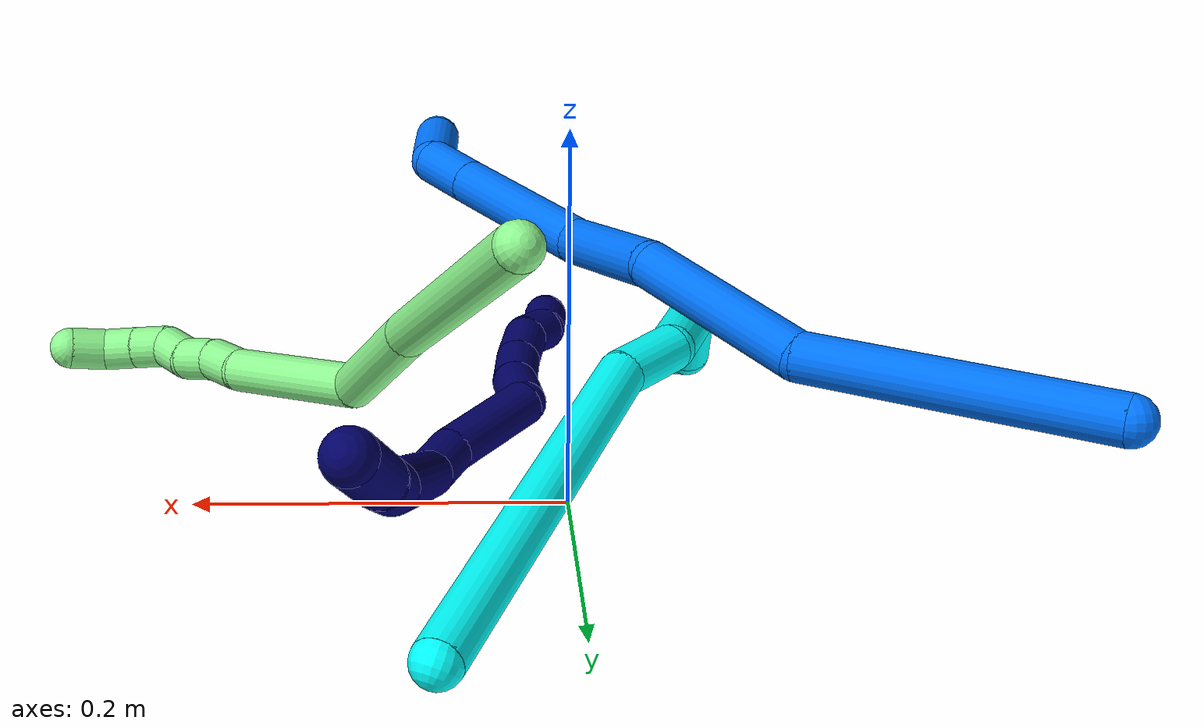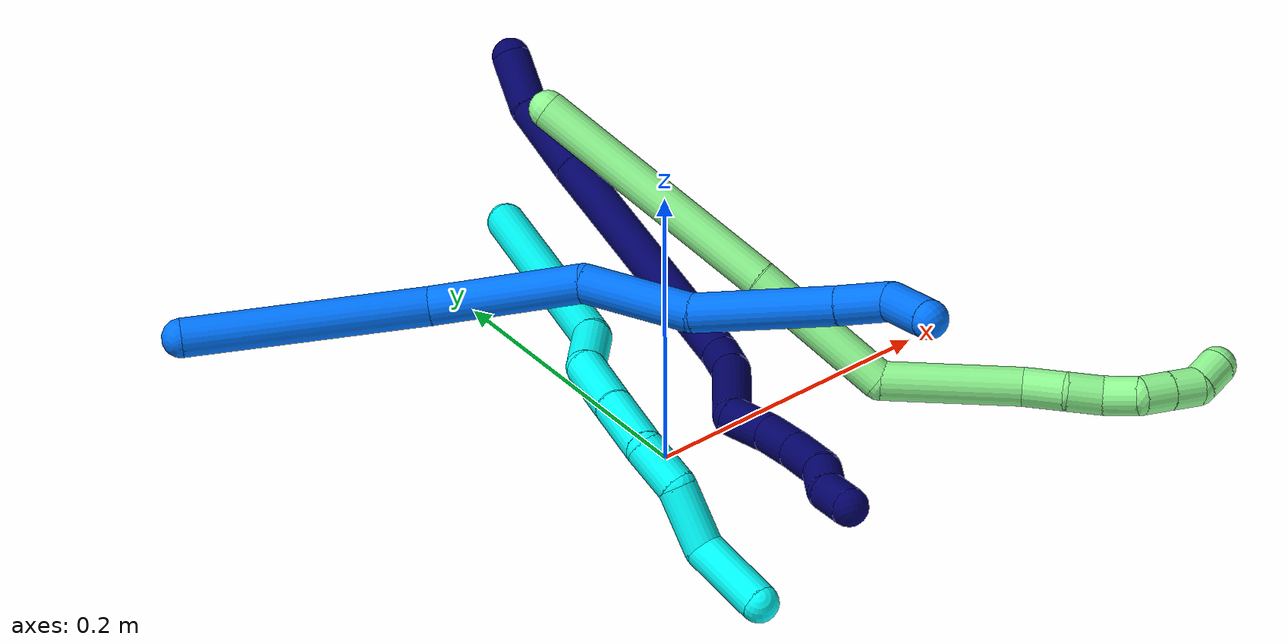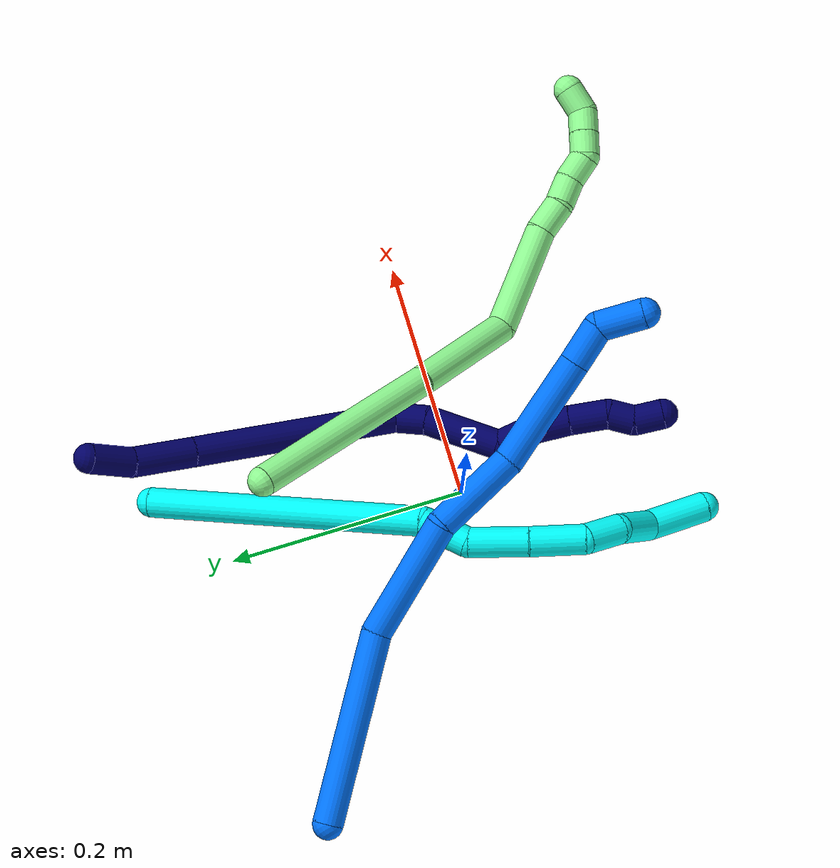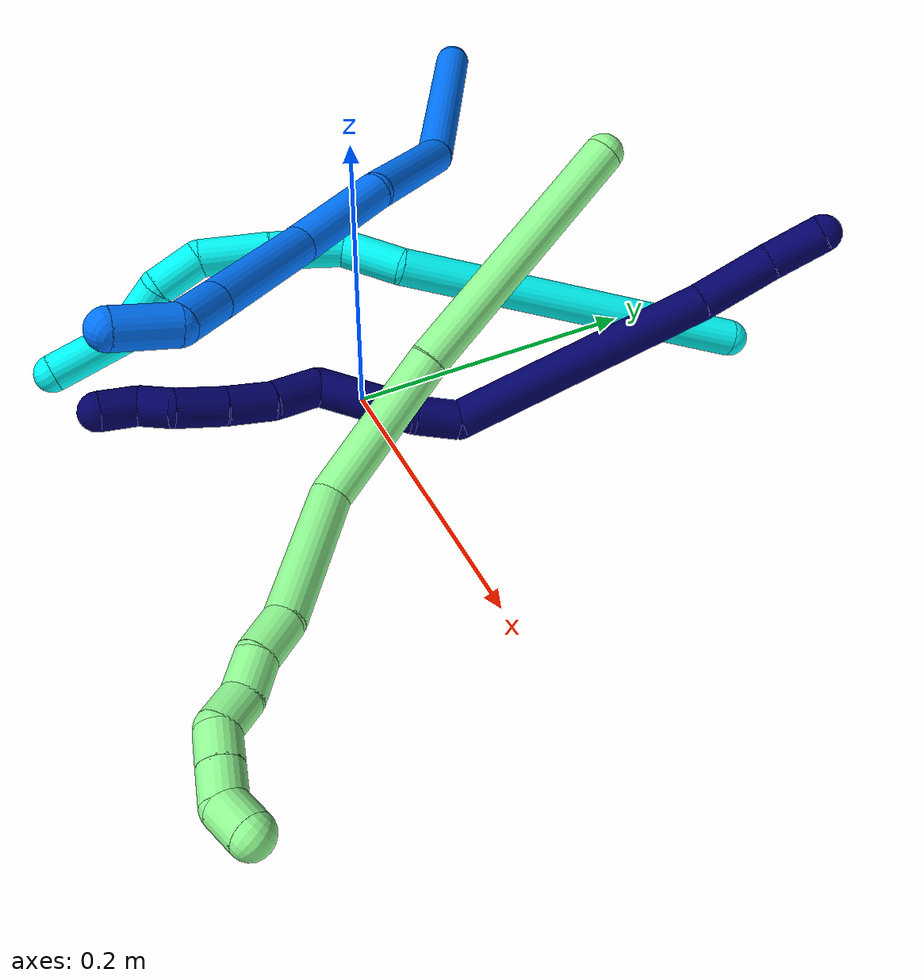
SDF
<sdf version="1.7">
 <world name="default">
  <model name="3">
   <static>0</static>
   <link name="3">
    <collision name="collision-cylinder-e_1_1_4">
     <pose>-0.035295 -0.068706 -0.090647 2.49302 -0.300882 -0.847282</pose>
     <geometry><cylinder><radius>0.0125</radius><length>0.238185</length></cylinder></geometry>
     <surface>
      <friction><ode><mu>1.16</mu><mu2>1.16</mu2><slip1>0</slip1><slip2>0</slip2></ode></friction>
      <contact><ode><kp>1e+06</kp><kd>1</kd><max_vel>0</max_vel><min_depth>0.001</min_depth></ode></contact>
     </surface>
    </collision>
    <visual name="visual-cylinder-e_1_1_4">
     <pose>-0.035295 -0.068706 -0.090647 2.49302 -0.300882 -0.847282</pose>
     <geometry><cylinder><radius>0.0125</radius><length>0.238185</length></cylinder></geometry>
     <material><ambient>0.003922 1 0.996078 1</ambient></material>
    </visual>
    <collision name="collision-cylinder-e_2_4_5">
     <pose>-0.07017 -0.152527 -0.19514 2.31239 0.020465 0.046492</pose>
     <geometry><cylinder><radius>0.0125</radius><length>0.041006</length></cylinder></geometry>
     <surface>
      <friction><ode><mu>1.16</mu><mu2>1.16</mu2><slip1>0</slip1><slip2>0</slip2></ode></friction>
      <contact><ode><kp>1e+06</kp><kd>1</kd><max_vel>0</max_vel><min_depth>0.001</min_depth></ode></contact>
     </surface>
    </collision>
    <visual name="visual-cylinder-e_2_4_5">
     <pose>-0.07017 -0.152527 -0.19514 2.31239 0.020465 0.046492</pose>
     <geometry><cylinder><radius>0.0125</radius><length>0.041006</length></cylinder></geometry>
     <material><ambient>0.003922 1 0.996078 1</ambient></material>
    </visual>
    <collision name="collision-cylinder-e_3_5_6">
     <pose>-0.080409 -0.1846 -0.223397 2.27517 -0.446683 -0.912972</pose>
     <geometry><cylinder><radius>0.0125</radius><length>0.049347</length></cylinder></geometry>
     <surface>
      <friction><ode><mu>1.16</mu><mu2>1.16</mu2><slip1>0</slip1><slip2>0</slip2></ode></friction>
      <contact><ode><kp>1e+06</kp><kd>1</kd><max_vel>0</max_vel><min_depth>0.001</min_depth></ode></contact>
     </surface>
    </collision>
    <visual name="visual-cylinder-e_3_5_6">
     <pose>-0.080409 -0.1846 -0.223397 2.27517 -0.446683 -0.912972</pose>
     <geometry><cylinder><radius>0.0125</radius><length>0.049347</length></cylinder></geometry>
     <material><ambient>0.003922 1 0.996078 1</ambient></material>
    </visual>
    <collision name="collision-cylinder-e_4_6_7">
     <pose>-0.101999 -0.217835 -0.249831 2.20705 -0.495258 -0.929032</pose>
     <geometry><cylinder><radius>0.0125</radius><length>0.046003</length></cylinder></geometry>
     <surface>
      <friction><ode><mu>1.16</mu><mu2>1.16</mu2><slip1>0</slip1><slip2>0</slip2></ode></friction>
      <contact><ode><kp>1e+06</kp><kd>1</kd><max_vel>0</max_vel><min_depth>0.001</min_depth></ode></contact>
     </surface>
    </collision>
    <visual name="visual-cylinder-e_4_6_7">
     <pose>-0.101999 -0.217835 -0.249831 2.20705 -0.495258 -0.929032</pose>
     <geometry><cylinder><radius>0.0125</radius><length>0.046003</length></cylinder></geometry>
     <material><ambient>0.003922 1 0.996078 1</ambient></material>
    </visual>
    <collision name="collision-cylinder-e_5_7_8">
     <pose>-0.12409 -0.245893 -0.263087 1.67488 -0.755645 -0.829868</pose>
     <geometry><cylinder><radius>0.0125</radius><length>0.032548</length></cylinder></geometry>
     <surface>
      <friction><ode><mu>1.16</mu><mu2>1.16</mu2><slip1>0</slip1><slip2>0</slip2></ode></friction>
      <contact><ode><kp>1e+06</kp><kd>1</kd><max_vel>0</max_vel><min_depth>0.001</min_depth></ode></contact>
     </surface>
    </collision>
    <visual name="visual-cylinder-e_5_7_8">
     <pose>-0.12409 -0.245893 -0.263087 1.67488 -0.755645 -0.829868</pose>
     <geometry><cylinder><radius>0.0125</radius><length>0.032548</length></cylinder></geometry>
     <material><ambient>0.003922 1 0.996078 1</ambient></material>
    </visual>
    <collision name="collision-cylinder-e_6_8_9">
     <pose>-0.145313 -0.274306 -0.257548 1.18424 -0.510776 -0.347689</pose>
     <geometry><cylinder><radius>0.0125</radius><length>0.041168</length></cylinder></geometry>
     <surface>
      <friction><ode><mu>1.16</mu><mu2>1.16</mu2><slip1>0</slip1><slip2>0</slip2></ode></friction>
      <contact><ode><kp>1e+06</kp><kd>1</kd><max_vel>0</max_vel><min_depth>0.001</min_depth></ode></contact>
     </surface>
    </collision>
    <visual name="visual-cylinder-e_6_8_9">
     <pose>-0.145313 -0.274306 -0.257548 1.18424 -0.510776 -0.347689</pose>
     <geometry><cylinder><radius>0.0125</radius><length>0.041168</length></cylinder></geometry>
     <material><ambient>0.003922 1 0.996078 1</ambient></material>
    </visual>
    <collision name="collision-cylinder-e_7_9_2">
     <pose>-0.173861 -0.308124 -0.256453 1.88973 -0.79596 -1.0535</pose>
     <geometry><cylinder><radius>0.0125</radius><length>0.051742</length></cylinder></geometry>
     <surface>
      <friction><ode><mu>1.16</mu><mu2>1.16</mu2><slip1>0</slip1><slip2>0</slip2></ode></friction>
      <contact><ode><kp>1e+06</kp><kd>1</kd><max_vel>0</max_vel><min_depth>0.001</min_depth></ode></contact>
     </surface>
    </collision>
    <visual name="visual-cylinder-e_7_9_2">
     <pose>-0.173861 -0.308124 -0.256453 1.88973 -0.79596 -1.0535</pose>
     <geometry><cylinder><radius>0.0125</radius><length>0.051742</length></cylinder></geometry>
     <material><ambient>0.003922 1 0.996078 1</ambient></material>
    </visual>
    <collision name="collision-sphere-2">
     <pose>-0.192347 -0.325311 -0.262128 0 -0 0</pose>
     <geometry><sphere><radius>0.0125</radius></sphere></geometry>
     <surface>
      <friction><ode><mu>1.16</mu><mu2>1.16</mu2><slip1>0</slip1><slip2>0</slip2></ode></friction>
      <contact><ode><kp>1e+06</kp><kd>1</kd><max_vel>0</max_vel><min_depth>0.001</min_depth></ode></contact>
     </surface>
    </collision>
    <visual name="visual-sphere-2">
     <pose>-0.192347 -0.325311 -0.262128 0 -0 0</pose>
     <geometry><sphere><radius>0.0125</radius></sphere></geometry>
     <material><ambient>0.003922 1 0.996078 1</ambient></material>
    </visual>
    <collision name="collision-sphere-9">
     <pose>-0.155376 -0.290938 -0.250778 0 -0 0</pose>
     <geometry><sphere><radius>0.0125</radius></sphere></geometry>
     <surface>
      <friction><ode><mu>1.16</mu><mu2>1.16</mu2><slip1>0</slip1><slip2>0</slip2></ode></friction>
      <contact><ode><kp>1e+06</kp><kd>1</kd><max_vel>0</max_vel><min_depth>0.001</min_depth></ode></contact>
     </surface>
    </collision>
    <visual name="visual-sphere-9">
     <pose>-0.155376 -0.290938 -0.250778 0 -0 0</pose>
     <geometry><sphere><radius>0.0125</radius></sphere></geometry>
     <material><ambient>0.003922 1 0.996078 1</ambient></material>
    </visual>
    <collision name="collision-sphere-4">
     <pose>-0.070589 -0.137411 -0.181294 0 -0 0</pose>
     <geometry><sphere><radius>0.0125</radius></sphere></geometry>
     <surface>
      <friction><ode><mu>1.16</mu><mu2>1.16</mu2><slip1>0</slip1><slip2>0</slip2></ode></friction>
      <contact><ode><kp>1e+06</kp><kd>1</kd><max_vel>0</max_vel><min_depth>0.001</min_depth></ode></contact>
     </surface>
    </collision>
    <visual name="visual-sphere-4">
     <pose>-0.070589 -0.137411 -0.181294 0 -0 0</pose>
     <geometry><sphere><radius>0.0125</radius></sphere></geometry>
     <material><ambient>0.003922 1 0.996078 1</ambient></material>
    </visual>
    <collision name="collision-sphere-1">
     <geometry><sphere><radius>0.0125</radius></sphere></geometry>
     <surface>
      <friction><ode><mu>1.16</mu><mu2>1.16</mu2><slip1>0</slip1><slip2>0</slip2></ode></friction>
      <contact><ode><kp>1e+06</kp><kd>1</kd><max_vel>0</max_vel><min_depth>0.001</min_depth></ode></contact>
     </surface>
    </collision>
    <visual name="visual-sphere-1">
     <geometry><sphere><radius>0.0125</radius></sphere></geometry>
     <material><ambient>0.003922 1 0.996078 1</ambient></material>
    </visual>
    <collision name="collision-sphere-8">
     <pose>-0.13525 -0.257674 -0.264318 0 -0 0</pose>
     <geometry><sphere><radius>0.0125</radius></sphere></geometry>
     <surface>
      <friction><ode><mu>1.16</mu><mu2>1.16</mu2><slip1>0</slip1><slip2>0</slip2></ode></friction>
      <contact><ode><kp>1e+06</kp><kd>1</kd><max_vel>0</max_vel><min_depth>0.001</min_depth></ode></contact>
     </surface>
    </collision>
    <visual name="visual-sphere-8">
     <pose>-0.13525 -0.257674 -0.264318 0 -0 0</pose>
     <geometry><sphere><radius>0.0125</radius></sphere></geometry>
     <material><ambient>0.003922 1 0.996078 1</ambient></material>
    </visual>
    <collision name="collision-sphere-5">
     <pose>-0.06975 -0.167643 -0.208987 0 -0 0</pose>
     <geometry><sphere><radius>0.0125</radius></sphere></geometry>
     <surface>
      <friction><ode><mu>1.16</mu><mu2>1.16</mu2><slip1>0</slip1><slip2>0</slip2></ode></friction>
      <contact><ode><kp>1e+06</kp><kd>1</kd><max_vel>0</max_vel><min_depth>0.001</min_depth></ode></contact>
     </surface>
    </collision>
    <visual name="visual-sphere-5">
     <pose>-0.06975 -0.167643 -0.208987 0 -0 0</pose>
     <geometry><sphere><radius>0.0125</radius></sphere></geometry>
     <material><ambient>0.003922 1 0.996078 1</ambient></material>
    </visual>
    <collision name="collision-sphere-6">
     <pose>-0.091067 -0.201557 -0.237806 0 -0 0</pose>
     <geometry><sphere><radius>0.0125</radius></sphere></geometry>
     <surface>
      <friction><ode><mu>1.16</mu><mu2>1.16</mu2><slip1>0</slip1><slip2>0</slip2></ode></friction>
      <contact><ode><kp>1e+06</kp><kd>1</kd><max_vel>0</max_vel><min_depth>0.001</min_depth></ode></contact>
     </surface>
    </collision>
    <visual name="visual-sphere-6">
     <pose>-0.091067 -0.201557 -0.237806 0 -0 0</pose>
     <geometry><sphere><radius>0.0125</radius></sphere></geometry>
     <material><ambient>0.003922 1 0.996078 1</ambient></material>
    </visual>
    <collision name="collision-sphere-7">
     <pose>-0.11293 -0.234113 -0.261856 0 -0 0</pose>
     <geometry><sphere><radius>0.0125</radius></sphere></geometry>
     <surface>
      <friction><ode><mu>1.16</mu><mu2>1.16</mu2><slip1>0</slip1><slip2>0</slip2></ode></friction>
      <contact><ode><kp>1e+06</kp><kd>1</kd><max_vel>0</max_vel><min_depth>0.001</min_depth></ode></contact>
     </surface>
    </collision>
    <visual name="visual-sphere-7">
     <pose>-0.11293 -0.234113 -0.261856 0 -0 0</pose>
     <geometry><sphere><radius>0.0125</radius></sphere></geometry>
     <material><ambient>0.003922 1 0.996078 1</ambient></material>
    </visual>
    <inertial>
     <pose>-0.077923 -0.153978 -0.16909 0 -0 0</pose>
     <mass>0.5</mass>
     <inertia>
      <ixx>-0.000106</ixx>
      <ixy>0</ixy>
      <ixz>0</ixz>
      <iyy>-0.001308</iyy>
      <iyz>0</iyz>
      <izz>0.001036</izz>
     </inertia>
    </inertial>
   </link>
   <pose>0.065842 0.251199 0.01249 2.55295 -0.070994 2.39325</pose>
  </model>
  <model name="7">
   <static>0</static>
   <link name="7">
    <collision name="collision-cylinder-e_1_1_4">
     <pose>0.001049 -0.000856 -0.01905 3.09668 0.054933 1.77085</pose>
     <geometry><cylinder><radius>0.0125</radius><length>0.038195</length></cylinder></geometry>
     <surface>
      <friction><ode><mu>1.16</mu><mu2>1.16</mu2><slip1>0</slip1><slip2>0</slip2></ode></friction>
      <contact><ode><kp>1e+06</kp><kd>1</kd><max_vel>0</max_vel><min_depth>0.001</min_depth></ode></contact>
     </surface>
    </collision>
    <visual name="visual-cylinder-e_1_1_4">
     <pose>0.001049 -0.000856 -0.01905 3.09668 0.054933 1.77085</pose>
     <geometry><cylinder><radius>0.0125</radius><length>0.038195</length></cylinder></geometry>
     <material><ambient>0.003922 0 0.403922 1</ambient></material>
    </visual>
    <collision name="collision-cylinder-e_2_4_5">
     <pose>0.004483 -0.009951 -0.063229 2.8248 0.089972 0.549387</pose>
     <geometry><cylinder><radius>0.0125</radius><length>0.053107</length></cylinder></geometry>
     <surface>
      <friction><ode><mu>1.16</mu><mu2>1.16</mu2><slip1>0</slip1><slip2>0</slip2></ode></friction>
      <contact><ode><kp>1e+06</kp><kd>1</kd><max_vel>0</max_vel><min_depth>0.001</min_depth></ode></contact>
     </surface>
    </collision>
    <visual name="visual-cylinder-e_2_4_5">
     <pose>0.004483 -0.009951 -0.063229 2.8248 0.089972 0.549387</pose>
     <geometry><cylinder><radius>0.0125</radius><length>0.053107</length></cylinder></geometry>
     <material><ambient>0.003922 0 0.403922 1</ambient></material>
    </visual>
    <collision name="collision-cylinder-e_3_5_6">
     <pose>0.008263 -0.050306 -0.169884 2.76631 0.015905 0.083719</pose>
     <geometry><cylinder><radius>0.0125</radius><length>0.175267</length></cylinder></geometry>
     <surface>
      <friction><ode><mu>1.16</mu><mu2>1.16</mu2><slip1>0</slip1><slip2>0</slip2></ode></friction>
      <contact><ode><kp>1e+06</kp><kd>1</kd><max_vel>0</max_vel><min_depth>0.001</min_depth></ode></contact>
     </surface>
    </collision>
    <visual name="visual-cylinder-e_3_5_6">
     <pose>0.008263 -0.050306 -0.169884 2.76631 0.015905 0.083719</pose>
     <geometry><cylinder><radius>0.0125</radius><length>0.175267</length></cylinder></geometry>
     <material><ambient>0.003922 0 0.403922 1</ambient></material>
    </visual>
    <collision name="collision-cylinder-e_4_6_7">
     <pose>0.002448 -0.087936 -0.262036 2.66305 -0.541957 -1.70044</pose>
     <geometry><cylinder><radius>0.0125</radius><length>0.027951</length></cylinder></geometry>
     <surface>
      <friction><ode><mu>1.16</mu><mu2>1.16</mu2><slip1>0</slip1><slip2>0</slip2></ode></friction>
      <contact><ode><kp>1e+06</kp><kd>1</kd><max_vel>0</max_vel><min_depth>0.001</min_depth></ode></contact>
     </surface>
    </collision>
    <visual name="visual-cylinder-e_4_6_7">
     <pose>0.002448 -0.087936 -0.262036 2.66305 -0.541957 -1.70044</pose>
     <geometry><cylinder><radius>0.0125</radius><length>0.027951</length></cylinder></geometry>
     <material><ambient>0.003922 0 0.403922 1</ambient></material>
    </visual>
    <collision name="collision-cylinder-e_5_7_8">
     <pose>-0.026103 -0.099731 -0.296176 2.88054 -0.719915 -2.47038</pose>
     <geometry><cylinder><radius>0.0125</radius><length>0.064738</length></cylinder></geometry>
     <surface>
      <friction><ode><mu>1.16</mu><mu2>1.16</mu2><slip1>0</slip1><slip2>0</slip2></ode></friction>
      <contact><ode><kp>1e+06</kp><kd>1</kd><max_vel>0</max_vel><min_depth>0.001</min_depth></ode></contact>
     </surface>
    </collision>
    <visual name="visual-cylinder-e_5_7_8">
     <pose>-0.026103 -0.099731 -0.296176 2.88054 -0.719915 -2.47038</pose>
     <geometry><cylinder><radius>0.0125</radius><length>0.064738</length></cylinder></geometry>
     <material><ambient>0.003922 0 0.403922 1</ambient></material>
    </visual>
    <collision name="collision-cylinder-e_6_8_9">
     <pose>-0.048921 -0.117441 -0.331069 2.35404 -0.091283 -0.218979</pose>
     <geometry><cylinder><radius>0.0125</radius><length>0.032393</length></cylinder></geometry>
     <surface>
      <friction><ode><mu>1.16</mu><mu2>1.16</mu2><slip1>0</slip1><slip2>0</slip2></ode></friction>
      <contact><ode><kp>1e+06</kp><kd>1</kd><max_vel>0</max_vel><min_depth>0.001</min_depth></ode></contact>
     </surface>
    </collision>
    <visual name="visual-cylinder-e_6_8_9">
     <pose>-0.048921 -0.117441 -0.331069 2.35404 -0.091283 -0.218979</pose>
     <geometry><cylinder><radius>0.0125</radius><length>0.032393</length></cylinder></geometry>
     <material><ambient>0.003922 0 0.403922 1</ambient></material>
    </visual>
    <collision name="collision-cylinder-e_7_9_10">
     <pose>-0.054726 -0.138226 -0.353474 2.43794 -0.290906 -0.759355</pose>
     <geometry><cylinder><radius>0.0125</radius><length>0.030187</length></cylinder></geometry>
     <surface>
      <friction><ode><mu>1.16</mu><mu2>1.16</mu2><slip1>0</slip1><slip2>0</slip2></ode></friction>
      <contact><ode><kp>1e+06</kp><kd>1</kd><max_vel>0</max_vel><min_depth>0.001</min_depth></ode></contact>
     </surface>
    </collision>
    <visual name="visual-cylinder-e_7_9_10">
     <pose>-0.054726 -0.138226 -0.353474 2.43794 -0.290906 -0.759355</pose>
     <geometry><cylinder><radius>0.0125</radius><length>0.030187</length></cylinder></geometry>
     <material><ambient>0.003922 0 0.403922 1</ambient></material>
    </visual>
    <collision name="collision-cylinder-e_8_10_11">
     <pose>-0.064804 -0.156867 -0.376322 2.47584 -0.365224 -0.981141</pose>
     <geometry><cylinder><radius>0.0125</radius><length>0.032192</length></cylinder></geometry>
     <surface>
      <friction><ode><mu>1.16</mu><mu2>1.16</mu2><slip1>0</slip1><slip2>0</slip2></ode></friction>
      <contact><ode><kp>1e+06</kp><kd>1</kd><max_vel>0</max_vel><min_depth>0.001</min_depth></ode></contact>
     </surface>
    </collision>
    <visual name="visual-cylinder-e_8_10_11">
     <pose>-0.064804 -0.156867 -0.376322 2.47584 -0.365224 -0.981141</pose>
     <geometry><cylinder><radius>0.0125</radius><length>0.032192</length></cylinder></geometry>
     <material><ambient>0.003922 0 0.403922 1</ambient></material>
    </visual>
    <collision name="collision-cylinder-e_9_11_12">
     <pose>-0.07586 -0.16821 -0.397443 2.92391 -0.508515 -2.34553</pose>
     <geometry><cylinder><radius>0.0125</radius><length>0.0218</length></cylinder></geometry>
     <surface>
      <friction><ode><mu>1.16</mu><mu2>1.16</mu2><slip1>0</slip1><slip2>0</slip2></ode></friction>
      <contact><ode><kp>1e+06</kp><kd>1</kd><max_vel>0</max_vel><min_depth>0.001</min_depth></ode></contact>
     </surface>
    </collision>
    <visual name="visual-cylinder-e_9_11_12">
     <pose>-0.07586 -0.16821 -0.397443 2.92391 -0.508515 -2.34553</pose>
     <geometry><cylinder><radius>0.0125</radius><length>0.0218</length></cylinder></geometry>
     <material><ambient>0.003922 0 0.403922 1</ambient></material>
    </visual>
    <collision name="collision-cylinder-e_10_12_2">
     <pose>-0.084251 -0.177431 -0.415969 2.48148 -0.257993 -0.723912</pose>
     <geometry><cylinder><radius>0.0125</radius><length>0.02417</length></cylinder></geometry>
     <surface>
      <friction><ode><mu>1.16</mu><mu2>1.16</mu2><slip1>0</slip1><slip2>0</slip2></ode></friction>
      <contact><ode><kp>1e+06</kp><kd>1</kd><max_vel>0</max_vel><min_depth>0.001</min_depth></ode></contact>
     </surface>
    </collision>
    <visual name="visual-cylinder-e_10_12_2">
     <pose>-0.084251 -0.177431 -0.415969 2.48148 -0.257993 -0.723912</pose>
     <geometry><cylinder><radius>0.0125</radius><length>0.02417</length></cylinder></geometry>
     <material><ambient>0.003922 0 0.403922 1</ambient></material>
    </visual>
    <collision name="collision-sphere-2">
     <pose>-0.087334 -0.184597 -0.4252 0 -0 0</pose>
     <geometry><sphere><radius>0.0125</radius></sphere></geometry>
     <surface>
      <friction><ode><mu>1.16</mu><mu2>1.16</mu2><slip1>0</slip1><slip2>0</slip2></ode></friction>
      <contact><ode><kp>1e+06</kp><kd>1</kd><max_vel>0</max_vel><min_depth>0.001</min_depth></ode></contact>
     </surface>
    </collision>
    <visual name="visual-sphere-2">
     <pose>-0.087334 -0.184597 -0.4252 0 -0 0</pose>
     <geometry><sphere><radius>0.0125</radius></sphere></geometry>
     <material><ambient>0.003922 0 0.403922 1</ambient></material>
    </visual>
    <collision name="collision-sphere-12">
     <pose>-0.081167 -0.170266 -0.406739 0 -0 0</pose>
     <geometry><sphere><radius>0.0125</radius></sphere></geometry>
     <surface>
      <friction><ode><mu>1.16</mu><mu2>1.16</mu2><slip1>0</slip1><slip2>0</slip2></ode></friction>
      <contact><ode><kp>1e+06</kp><kd>1</kd><max_vel>0</max_vel><min_depth>0.001</min_depth></ode></contact>
     </surface>
    </collision>
    <visual name="visual-sphere-12">
     <pose>-0.081167 -0.170266 -0.406739 0 -0 0</pose>
     <geometry><sphere><radius>0.0125</radius></sphere></geometry>
     <material><ambient>0.003922 0 0.403922 1</ambient></material>
    </visual>
    <collision name="collision-sphere-11">
     <pose>-0.070553 -0.166153 -0.388146 0 -0 0</pose>
     <geometry><sphere><radius>0.0125</radius></sphere></geometry>
     <surface>
      <friction><ode><mu>1.16</mu><mu2>1.16</mu2><slip1>0</slip1><slip2>0</slip2></ode></friction>
      <contact><ode><kp>1e+06</kp><kd>1</kd><max_vel>0</max_vel><min_depth>0.001</min_depth></ode></contact>
     </surface>
    </collision>
    <visual name="visual-sphere-11">
     <pose>-0.070553 -0.166153 -0.388146 0 -0 0</pose>
     <geometry><sphere><radius>0.0125</radius></sphere></geometry>
     <material><ambient>0.003922 0 0.403922 1</ambient></material>
    </visual>
    <collision name="collision-sphere-10">
     <pose>-0.059055 -0.147581 -0.364499 0 -0 0</pose>
     <geometry><sphere><radius>0.0125</radius></sphere></geometry>
     <surface>
      <friction><ode><mu>1.16</mu><mu2>1.16</mu2><slip1>0</slip1><slip2>0</slip2></ode></friction>
      <contact><ode><kp>1e+06</kp><kd>1</kd><max_vel>0</max_vel><min_depth>0.001</min_depth></ode></contact>
     </surface>
    </collision>
    <visual name="visual-sphere-10">
     <pose>-0.059055 -0.147581 -0.364499 0 -0 0</pose>
     <geometry><sphere><radius>0.0125</radius></sphere></geometry>
     <material><ambient>0.003922 0 0.403922 1</ambient></material>
    </visual>
    <collision name="collision-sphere-9">
     <pose>-0.050397 -0.128871 -0.342449 0 -0 0</pose>
     <geometry><sphere><radius>0.0125</radius></sphere></geometry>
     <surface>
      <friction><ode><mu>1.16</mu><mu2>1.16</mu2><slip1>0</slip1><slip2>0</slip2></ode></friction>
      <contact><ode><kp>1e+06</kp><kd>1</kd><max_vel>0</max_vel><min_depth>0.001</min_depth></ode></contact>
     </surface>
    </collision>
    <visual name="visual-sphere-9">
     <pose>-0.050397 -0.128871 -0.342449 0 -0 0</pose>
     <geometry><sphere><radius>0.0125</radius></sphere></geometry>
     <material><ambient>0.003922 0 0.403922 1</ambient></material>
    </visual>
    <collision name="collision-sphere-4">
     <pose>0.002097 -0.001712 -0.038099 0 -0 0</pose>
     <geometry><sphere><radius>0.0125</radius></sphere></geometry>
     <surface>
      <friction><ode><mu>1.16</mu><mu2>1.16</mu2><slip1>0</slip1><slip2>0</slip2></ode></friction>
      <contact><ode><kp>1e+06</kp><kd>1</kd><max_vel>0</max_vel><min_depth>0.001</min_depth></ode></contact>
     </surface>
    </collision>
    <visual name="visual-sphere-4">
     <pose>0.002097 -0.001712 -0.038099 0 -0 0</pose>
     <geometry><sphere><radius>0.0125</radius></sphere></geometry>
     <material><ambient>0.003922 0 0.403922 1</ambient></material>
    </visual>
    <collision name="collision-sphere-1">
     <geometry><sphere><radius>0.0125</radius></sphere></geometry>
     <surface>
      <friction><ode><mu>1.16</mu><mu2>1.16</mu2><slip1>0</slip1><slip2>0</slip2></ode></friction>
      <contact><ode><kp>1e+06</kp><kd>1</kd><max_vel>0</max_vel><min_depth>0.001</min_depth></ode></contact>
     </surface>
    </collision>
    <visual name="visual-sphere-1">
     <geometry><sphere><radius>0.0125</radius></sphere></geometry>
     <material><ambient>0.003922 0 0.403922 1</ambient></material>
    </visual>
    <collision name="collision-sphere-8">
     <pose>-0.047444 -0.106012 -0.319689 0 -0 0</pose>
     <geometry><sphere><radius>0.0125</radius></sphere></geometry>
     <surface>
      <friction><ode><mu>1.16</mu><mu2>1.16</mu2><slip1>0</slip1><slip2>0</slip2></ode></friction>
      <contact><ode><kp>1e+06</kp><kd>1</kd><max_vel>0</max_vel><min_depth>0.001</min_depth></ode></contact>
     </surface>
    </collision>
    <visual name="visual-sphere-8">
     <pose>-0.047444 -0.106012 -0.319689 0 -0 0</pose>
     <geometry><sphere><radius>0.0125</radius></sphere></geometry>
     <material><ambient>0.003922 0 0.403922 1</ambient></material>
    </visual>
    <collision name="collision-sphere-5">
     <pose>0.006869 -0.01819 -0.08836 0 -0 0</pose>
     <geometry><sphere><radius>0.0125</radius></sphere></geometry>
     <surface>
      <friction><ode><mu>1.16</mu><mu2>1.16</mu2><slip1>0</slip1><slip2>0</slip2></ode></friction>
      <contact><ode><kp>1e+06</kp><kd>1</kd><max_vel>0</max_vel><min_depth>0.001</min_depth></ode></contact>
     </surface>
    </collision>
    <visual name="visual-sphere-5">
     <pose>0.006869 -0.01819 -0.08836 0 -0 0</pose>
     <geometry><sphere><radius>0.0125</radius></sphere></geometry>
     <material><ambient>0.003922 0 0.403922 1</ambient></material>
    </visual>
    <collision name="collision-sphere-6">
     <pose>0.009656 -0.082423 -0.251408 0 -0 0</pose>
     <geometry><sphere><radius>0.0125</radius></sphere></geometry>
     <surface>
      <friction><ode><mu>1.16</mu><mu2>1.16</mu2><slip1>0</slip1><slip2>0</slip2></ode></friction>
      <contact><ode><kp>1e+06</kp><kd>1</kd><max_vel>0</max_vel><min_depth>0.001</min_depth></ode></contact>
     </surface>
    </collision>
    <visual name="visual-sphere-6">
     <pose>0.009656 -0.082423 -0.251408 0 -0 0</pose>
     <geometry><sphere><radius>0.0125</radius></sphere></geometry>
     <material><ambient>0.003922 0 0.403922 1</ambient></material>
    </visual>
    <collision name="collision-sphere-7">
     <pose>-0.004761 -0.093449 -0.272664 0 -0 0</pose>
     <geometry><sphere><radius>0.0125</radius></sphere></geometry>
     <surface>
      <friction><ode><mu>1.16</mu><mu2>1.16</mu2><slip1>0</slip1><slip2>0</slip2></ode></friction>
      <contact><ode><kp>1e+06</kp><kd>1</kd><max_vel>0</max_vel><min_depth>0.001</min_depth></ode></contact>
     </surface>
    </collision>
    <visual name="visual-sphere-7">
     <pose>-0.004761 -0.093449 -0.272664 0 -0 0</pose>
     <geometry><sphere><radius>0.0125</radius></sphere></geometry>
     <material><ambient>0.003922 0 0.403922 1</ambient></material>
    </visual>
    <inertial>
     <pose>-0.017816 -0.078549 -0.225172 0 -0 0</pose>
     <mass>0.5</mass>
     <inertia>
      <ixx>0.000481</ixx>
      <ixy>0</ixy>
      <ixz>0</ixz>
      <iyy>-0.0004</iyy>
      <iyz>0</iyz>
      <izz>0.000167</izz>
     </inertia>
    </inertial>
   </link>
   <pose>0.098172 0.286111 0.11115 -0.852737 0.72501 0.146164</pose>
  </model>
  <model name="13">
   <static>0</static>
   <link name="13">
    <collision name="collision-cylinder-e_1_1_4">
     <pose>-0.00151 0.003455 -0.086254 -3.10156 -0.017485 0.823473</pose>
     <geometry><cylinder><radius>0.0125</radius><length>0.172672</length></cylinder></geometry>
     <surface>
      <friction><ode><mu>1.16</mu><mu2>1.16</mu2><slip1>0</slip1><slip2>0</slip2></ode></friction>
      <contact><ode><kp>1e+06</kp><kd>1</kd><max_vel>0</max_vel><min_depth>0.001</min_depth></ode></contact>
     </surface>
    </collision>
    <visual name="visual-cylinder-e_1_1_4">
     <pose>-0.00151 0.003455 -0.086254 -3.10156 -0.017485 0.823473</pose>
     <geometry><cylinder><radius>0.0125</radius><length>0.172672</length></cylinder></geometry>
     <material><ambient>0.564706 0.984314 0.572549 1</ambient></material>
    </visual>
    <collision name="collision-cylinder-e_2_4_5">
     <pose>-0.003359 0.013031 -0.221563 -3.01747 -0.00687 0.110436</pose>
     <geometry><cylinder><radius>0.0125</radius><length>0.098874</length></cylinder></geometry>
     <surface>
      <friction><ode><mu>1.16</mu><mu2>1.16</mu2><slip1>0</slip1><slip2>0</slip2></ode></friction>
      <contact><ode><kp>1e+06</kp><kd>1</kd><max_vel>0</max_vel><min_depth>0.001</min_depth></ode></contact>
     </surface>
    </collision>
    <visual name="visual-cylinder-e_2_4_5">
     <pose>-0.003359 0.013031 -0.221563 -3.01747 -0.00687 0.110436</pose>
     <geometry><cylinder><radius>0.0125</radius><length>0.098874</length></cylinder></geometry>
     <material><ambient>0.564706 0.984314 0.572549 1</ambient></material>
    </visual>
    <collision name="collision-cylinder-e_3_5_6">
     <pose>0.022373 0.014361 -0.307277 3.01166 0.614205 2.73693</pose>
     <geometry><cylinder><radius>0.0125</radius><length>0.090477</length></cylinder></geometry>
     <surface>
      <friction><ode><mu>1.16</mu><mu2>1.16</mu2><slip1>0</slip1><slip2>0</slip2></ode></friction>
      <contact><ode><kp>1e+06</kp><kd>1</kd><max_vel>0</max_vel><min_depth>0.001</min_depth></ode></contact>
     </surface>
    </collision>
    <visual name="visual-cylinder-e_3_5_6">
     <pose>0.022373 0.014361 -0.307277 3.01166 0.614205 2.73693</pose>
     <geometry><cylinder><radius>0.0125</radius><length>0.090477</length></cylinder></geometry>
     <material><ambient>0.564706 0.984314 0.572549 1</ambient></material>
    </visual>
    <collision name="collision-cylinder-e_4_6_7">
     <pose>0.054081 0.005624 -0.355755 2.81927 0.424755 1.84955</pose>
     <geometry><cylinder><radius>0.0125</radius><length>0.027352</length></cylinder></geometry>
     <surface>
      <friction><ode><mu>1.16</mu><mu2>1.16</mu2><slip1>0</slip1><slip2>0</slip2></ode></friction>
      <contact><ode><kp>1e+06</kp><kd>1</kd><max_vel>0</max_vel><min_depth>0.001</min_depth></ode></contact>
     </surface>
    </collision>
    <visual name="visual-cylinder-e_4_6_7">
     <pose>0.054081 0.005624 -0.355755 2.81927 0.424755 1.84955</pose>
     <geometry><cylinder><radius>0.0125</radius><length>0.027352</length></cylinder></geometry>
     <material><ambient>0.564706 0.984314 0.572549 1</ambient></material>
    </visual>
    <collision name="collision-cylinder-e_5_7_8">
     <pose>0.066291 0.00123 -0.377686 3.09749 0.576088 2.99299</pose>
     <geometry><cylinder><radius>0.0125</radius><length>0.024138</length></cylinder></geometry>
     <surface>
      <friction><ode><mu>1.16</mu><mu2>1.16</mu2><slip1>0</slip1><slip2>0</slip2></ode></friction>
      <contact><ode><kp>1e+06</kp><kd>1</kd><max_vel>0</max_vel><min_depth>0.001</min_depth></ode></contact>
     </surface>
    </collision>
    <visual name="visual-cylinder-e_5_7_8">
     <pose>0.066291 0.00123 -0.377686 3.09749 0.576088 2.99299</pose>
     <geometry><cylinder><radius>0.0125</radius><length>0.024138</length></cylinder></geometry>
     <material><ambient>0.564706 0.984314 0.572549 1</ambient></material>
    </visual>
    <collision name="collision-cylinder-e_6_8_9">
     <pose>0.078231 -0.003604 -0.397278 2.70816 0.474443 1.66426</pose>
     <geometry><cylinder><radius>0.0125</radius><length>0.02349</length></cylinder></geometry>
     <surface>
      <friction><ode><mu>1.16</mu><mu2>1.16</mu2><slip1>0</slip1><slip2>0</slip2></ode></friction>
      <contact><ode><kp>1e+06</kp><kd>1</kd><max_vel>0</max_vel><min_depth>0.001</min_depth></ode></contact>
     </surface>
    </collision>
    <visual name="visual-cylinder-e_6_8_9">
     <pose>0.078231 -0.003604 -0.397278 2.70816 0.474443 1.66426</pose>
     <geometry><cylinder><radius>0.0125</radius><length>0.02349</length></cylinder></geometry>
     <material><ambient>0.564706 0.984314 0.572549 1</ambient></material>
    </visual>
    <collision name="collision-cylinder-e_7_9_10">
     <pose>0.091795 -0.006618 -0.412603 -2.91068 0.938754 -2.69201</pose>
     <geometry><cylinder><radius>0.0125</radius><length>0.020321</length></cylinder></geometry>
     <surface>
      <friction><ode><mu>1.16</mu><mu2>1.16</mu2><slip1>0</slip1><slip2>0</slip2></ode></friction>
      <contact><ode><kp>1e+06</kp><kd>1</kd><max_vel>0</max_vel><min_depth>0.001</min_depth></ode></contact>
     </surface>
    </collision>
    <visual name="visual-cylinder-e_7_9_10">
     <pose>0.091795 -0.006618 -0.412603 -2.91068 0.938754 -2.69201</pose>
     <geometry><cylinder><radius>0.0125</radius><length>0.020321</length></cylinder></geometry>
     <material><ambient>0.564706 0.984314 0.572549 1</ambient></material>
    </visual>
    <collision name="collision-cylinder-e_8_10_11">
     <pose>0.108216 -0.003718 -0.424309 -2.88694 0.935916 -2.64543</pose>
     <geometry><cylinder><radius>0.0125</radius><length>0.020428</length></cylinder></geometry>
     <surface>
      <friction><ode><mu>1.16</mu><mu2>1.16</mu2><slip1>0</slip1><slip2>0</slip2></ode></friction>
      <contact><ode><kp>1e+06</kp><kd>1</kd><max_vel>0</max_vel><min_depth>0.001</min_depth></ode></contact>
     </surface>
    </collision>
    <visual name="visual-cylinder-e_8_10_11">
     <pose>0.108216 -0.003718 -0.424309 -2.88694 0.935916 -2.64543</pose>
     <geometry><cylinder><radius>0.0125</radius><length>0.020428</length></cylinder></geometry>
     <material><ambient>0.564706 0.984314 0.572549 1</ambient></material>
    </visual>
    <collision name="collision-cylinder-e_9_11_2">
     <pose>0.127369 -0.00014 -0.430473 -1.71669 1.38324 -1.52856</pose>
     <geometry><cylinder><radius>0.0125</radius><length>0.022247</length></cylinder></geometry>
     <surface>
      <friction><ode><mu>1.16</mu><mu2>1.16</mu2><slip1>0</slip1><slip2>0</slip2></ode></friction>
      <contact><ode><kp>1e+06</kp><kd>1</kd><max_vel>0</max_vel><min_depth>0.001</min_depth></ode></contact>
     </surface>
    </collision>
    <visual name="visual-cylinder-e_9_11_2">
     <pose>0.127369 -0.00014 -0.430473 -1.71669 1.38324 -1.52856</pose>
     <geometry><cylinder><radius>0.0125</radius><length>0.022247</length></cylinder></geometry>
     <material><ambient>0.564706 0.984314 0.572549 1</ambient></material>
    </visual>
    <collision name="collision-sphere-2">
     <pose>0.138297 0.001912 -0.430775 0 -0 0</pose>
     <geometry><sphere><radius>0.0125</radius></sphere></geometry>
     <surface>
      <friction><ode><mu>1.16</mu><mu2>1.16</mu2><slip1>0</slip1><slip2>0</slip2></ode></friction>
      <contact><ode><kp>1e+06</kp><kd>1</kd><max_vel>0</max_vel><min_depth>0.001</min_depth></ode></contact>
     </surface>
    </collision>
    <visual name="visual-sphere-2">
     <pose>0.138297 0.001912 -0.430775 0 -0 0</pose>
     <geometry><sphere><radius>0.0125</radius></sphere></geometry>
     <material><ambient>0.564706 0.984314 0.572549 1</ambient></material>
    </visual>
    <collision name="collision-sphere-11">
     <pose>0.11644 -0.002192 -0.430172 0 -0 0</pose>
     <geometry><sphere><radius>0.0125</radius></sphere></geometry>
     <surface>
      <friction><ode><mu>1.16</mu><mu2>1.16</mu2><slip1>0</slip1><slip2>0</slip2></ode></friction>
      <contact><ode><kp>1e+06</kp><kd>1</kd><max_vel>0</max_vel><min_depth>0.001</min_depth></ode></contact>
     </surface>
    </collision>
    <visual name="visual-sphere-11">
     <pose>0.11644 -0.002192 -0.430172 0 -0 0</pose>
     <geometry><sphere><radius>0.0125</radius></sphere></geometry>
     <material><ambient>0.564706 0.984314 0.572549 1</ambient></material>
    </visual>
    <collision name="collision-sphere-10">
     <pose>0.099993 -0.005244 -0.418447 0 -0 0</pose>
     <geometry><sphere><radius>0.0125</radius></sphere></geometry>
     <surface>
      <friction><ode><mu>1.16</mu><mu2>1.16</mu2><slip1>0</slip1><slip2>0</slip2></ode></friction>
      <contact><ode><kp>1e+06</kp><kd>1</kd><max_vel>0</max_vel><min_depth>0.001</min_depth></ode></contact>
     </surface>
    </collision>
    <visual name="visual-sphere-10">
     <pose>0.099993 -0.005244 -0.418447 0 -0 0</pose>
     <geometry><sphere><radius>0.0125</radius></sphere></geometry>
     <material><ambient>0.564706 0.984314 0.572549 1</ambient></material>
    </visual>
    <collision name="collision-sphere-9">
     <pose>0.083597 -0.007992 -0.40676 0 -0 0</pose>
     <geometry><sphere><radius>0.0125</radius></sphere></geometry>
     <surface>
      <friction><ode><mu>1.16</mu><mu2>1.16</mu2><slip1>0</slip1><slip2>0</slip2></ode></friction>
      <contact><ode><kp>1e+06</kp><kd>1</kd><max_vel>0</max_vel><min_depth>0.001</min_depth></ode></contact>
     </surface>
    </collision>
    <visual name="visual-sphere-9">
     <pose>0.083597 -0.007992 -0.40676 0 -0 0</pose>
     <geometry><sphere><radius>0.0125</radius></sphere></geometry>
     <material><ambient>0.564706 0.984314 0.572549 1</ambient></material>
    </visual>
    <collision name="collision-sphere-4">
     <pose>-0.003019 0.00691 -0.172507 0 -0 0</pose>
     <geometry><sphere><radius>0.0125</radius></sphere></geometry>
     <surface>
      <friction><ode><mu>1.16</mu><mu2>1.16</mu2><slip1>0</slip1><slip2>0</slip2></ode></friction>
      <contact><ode><kp>1e+06</kp><kd>1</kd><max_vel>0</max_vel><min_depth>0.001</min_depth></ode></contact>
     </surface>
    </collision>
    <visual name="visual-sphere-4">
     <pose>-0.003019 0.00691 -0.172507 0 -0 0</pose>
     <geometry><sphere><radius>0.0125</radius></sphere></geometry>
     <material><ambient>0.564706 0.984314 0.572549 1</ambient></material>
    </visual>
    <collision name="collision-sphere-1">
     <geometry><sphere><radius>0.0125</radius></sphere></geometry>
     <surface>
      <friction><ode><mu>1.16</mu><mu2>1.16</mu2><slip1>0</slip1><slip2>0</slip2></ode></friction>
      <contact><ode><kp>1e+06</kp><kd>1</kd><max_vel>0</max_vel><min_depth>0.001</min_depth></ode></contact>
     </surface>
    </collision>
    <visual name="visual-sphere-1">
     <geometry><sphere><radius>0.0125</radius></sphere></geometry>
     <material><ambient>0.564706 0.984314 0.572549 1</ambient></material>
    </visual>
    <collision name="collision-sphere-8">
     <pose>0.072866 0.000784 -0.387797 0 -0 0</pose>
     <geometry><sphere><radius>0.0125</radius></sphere></geometry>
     <surface>
      <friction><ode><mu>1.16</mu><mu2>1.16</mu2><slip1>0</slip1><slip2>0</slip2></ode></friction>
      <contact><ode><kp>1e+06</kp><kd>1</kd><max_vel>0</max_vel><min_depth>0.001</min_depth></ode></contact>
     </surface>
    </collision>
    <visual name="visual-sphere-8">
     <pose>0.072866 0.000784 -0.387797 0 -0 0</pose>
     <geometry><sphere><radius>0.0125</radius></sphere></geometry>
     <material><ambient>0.564706 0.984314 0.572549 1</ambient></material>
    </visual>
    <collision name="collision-sphere-5">
     <pose>-0.003698 0.019151 -0.270618 0 -0 0</pose>
     <geometry><sphere><radius>0.0125</radius></sphere></geometry>
     <surface>
      <friction><ode><mu>1.16</mu><mu2>1.16</mu2><slip1>0</slip1><slip2>0</slip2></ode></friction>
      <contact><ode><kp>1e+06</kp><kd>1</kd><max_vel>0</max_vel><min_depth>0.001</min_depth></ode></contact>
     </surface>
    </collision>
    <visual name="visual-sphere-5">
     <pose>-0.003698 0.019151 -0.270618 0 -0 0</pose>
     <geometry><sphere><radius>0.0125</radius></sphere></geometry>
     <material><ambient>0.564706 0.984314 0.572549 1</ambient></material>
    </visual>
    <collision name="collision-sphere-6">
     <pose>0.048445 0.009571 -0.343936 0 -0 0</pose>
     <geometry><sphere><radius>0.0125</radius></sphere></geometry>
     <surface>
      <friction><ode><mu>1.16</mu><mu2>1.16</mu2><slip1>0</slip1><slip2>0</slip2></ode></friction>
      <contact><ode><kp>1e+06</kp><kd>1</kd><max_vel>0</max_vel><min_depth>0.001</min_depth></ode></contact>
     </surface>
    </collision>
    <visual name="visual-sphere-6">
     <pose>0.048445 0.009571 -0.343936 0 -0 0</pose>
     <geometry><sphere><radius>0.0125</radius></sphere></geometry>
     <material><ambient>0.564706 0.984314 0.572549 1</ambient></material>
    </visual>
    <collision name="collision-sphere-7">
     <pose>0.059717 0.001676 -0.367574 0 -0 0</pose>
     <geometry><sphere><radius>0.0125</radius></sphere></geometry>
     <surface>
      <friction><ode><mu>1.16</mu><mu2>1.16</mu2><slip1>0</slip1><slip2>0</slip2></ode></friction>
      <contact><ode><kp>1e+06</kp><kd>1</kd><max_vel>0</max_vel><min_depth>0.001</min_depth></ode></contact>
     </surface>
    </collision>
    <visual name="visual-sphere-7">
     <pose>0.059717 0.001676 -0.367574 0 -0 0</pose>
     <geometry><sphere><radius>0.0125</radius></sphere></geometry>
     <material><ambient>0.564706 0.984314 0.572549 1</ambient></material>
    </visual>
    <inertial>
     <pose>0.026516 0.006139 -0.238821 0 -0 0</pose>
     <mass>0.5</mass>
     <inertia>
      <ixx>0.000691</ixx>
      <ixy>0</ixy>
      <ixz>0</ixz>
      <iyy>4.4e-05</iyy>
      <iyz>0</iyz>
      <izz>-9.1e-05</izz>
     </inertia>
    </inertial>
   </link>
   <pose>0.030149 0.156958 0.168703 -1.15769 -0.296163 0.227339</pose>
  </model>
  <model name="14">
   <static>0</static>
   <link name="14">
    <collision name="collision-cylinder-e_1_1_4">
     <pose>0.045095 -0.03053 0.056388 0.496239 0.612918 0.159985</pose>
     <geometry><cylinder><radius>0.0125</radius><length>0.156783</length></cylinder></geometry>
     <surface>
      <friction><ode><mu>1.16</mu><mu2>1.16</mu2><slip1>0</slip1><slip2>0</slip2></ode></friction>
      <contact><ode><kp>1e+06</kp><kd>1</kd><max_vel>0</max_vel><min_depth>0.001</min_depth></ode></contact>
     </surface>
    </collision>
    <visual name="visual-cylinder-e_1_1_4">
     <pose>0.045095 -0.03053 0.056388 0.496239 0.612918 0.159985</pose>
     <geometry><cylinder><radius>0.0125</radius><length>0.156783</length></cylinder></geometry>
     <material><ambient>0 0.462745 1 1</ambient></material>
    </visual>
    <collision name="collision-cylinder-e_2_4_5">
     <pose>0.120874 -0.094731 0.135764 0.971766 0.645157 0.349446</pose>
     <geometry><cylinder><radius>0.0125</radius><length>0.102053</length></cylinder></geometry>
     <surface>
      <friction><ode><mu>1.16</mu><mu2>1.16</mu2><slip1>0</slip1><slip2>0</slip2></ode></friction>
      <contact><ode><kp>1e+06</kp><kd>1</kd><max_vel>0</max_vel><min_depth>0.001</min_depth></ode></contact>
     </surface>
    </collision>
    <visual name="visual-cylinder-e_2_4_5">
     <pose>0.120874 -0.094731 0.135764 0.971766 0.645157 0.349446</pose>
     <geometry><cylinder><radius>0.0125</radius><length>0.102053</length></cylinder></geometry>
     <material><ambient>0 0.462745 1 1</ambient></material>
    </visual>
    <collision name="collision-cylinder-e_3_5_6">
     <pose>0.183355 -0.145116 0.167827 1.07334 1.03179 0.65079</pose>
     <geometry><cylinder><radius>0.0125</radius><length>0.074103</length></cylinder></geometry>
     <surface>
      <friction><ode><mu>1.16</mu><mu2>1.16</mu2><slip1>0</slip1><slip2>0</slip2></ode></friction>
      <contact><ode><kp>1e+06</kp><kd>1</kd><max_vel>0</max_vel><min_depth>0.001</min_depth></ode></contact>
     </surface>
    </collision>
    <visual name="visual-cylinder-e_3_5_6">
     <pose>0.183355 -0.145116 0.167827 1.07334 1.03179 0.65079</pose>
     <geometry><cylinder><radius>0.0125</radius><length>0.074103</length></cylinder></geometry>
     <material><ambient>0 0.462745 1 1</ambient></material>
    </visual>
    <collision name="collision-cylinder-e_4_6_7">
     <pose>0.246697 -0.190645 0.196613 0.970869 0.734741 0.400592</pose>
     <geometry><cylinder><radius>0.0125</radius><length>0.094104</length></cylinder></geometry>
     <surface>
      <friction><ode><mu>1.16</mu><mu2>1.16</mu2><slip1>0</slip1><slip2>0</slip2></ode></friction>
      <contact><ode><kp>1e+06</kp><kd>1</kd><max_vel>0</max_vel><min_depth>0.001</min_depth></ode></contact>
     </surface>
    </collision>
    <visual name="visual-cylinder-e_4_6_7">
     <pose>0.246697 -0.190645 0.196613 0.970869 0.734741 0.400592</pose>
     <geometry><cylinder><radius>0.0125</radius><length>0.094104</length></cylinder></geometry>
     <material><ambient>0 0.462745 1 1</ambient></material>
    </visual>
    <collision name="collision-cylinder-e_5_7_8">
     <pose>0.289378 -0.230201 0.223737 0.966655 0.706483 0.382303</pose>
     <geometry><cylinder><radius>0.0125</radius><length>0.034312</length></cylinder></geometry>
     <surface>
      <friction><ode><mu>1.16</mu><mu2>1.16</mu2><slip1>0</slip1><slip2>0</slip2></ode></friction>
      <contact><ode><kp>1e+06</kp><kd>1</kd><max_vel>0</max_vel><min_depth>0.001</min_depth></ode></contact>
     </surface>
    </collision>
    <visual name="visual-cylinder-e_5_7_8">
     <pose>0.289378 -0.230201 0.223737 0.966655 0.706483 0.382303</pose>
     <geometry><cylinder><radius>0.0125</radius><length>0.034312</length></cylinder></geometry>
     <material><ambient>0 0.462745 1 1</ambient></material>
    </visual>
    <collision name="collision-cylinder-e_6_8_2">
     <pose>0.314489 -0.253224 0.225934 1.97237 0.808416 1.14765</pose>
     <geometry><cylinder><radius>0.0125</radius><length>0.038645</length></cylinder></geometry>
     <surface>
      <friction><ode><mu>1.16</mu><mu2>1.16</mu2><slip1>0</slip1><slip2>0</slip2></ode></friction>
      <contact><ode><kp>1e+06</kp><kd>1</kd><max_vel>0</max_vel><min_depth>0.001</min_depth></ode></contact>
     </surface>
    </collision>
    <visual name="visual-cylinder-e_6_8_2">
     <pose>0.314489 -0.253224 0.225934 1.97237 0.808416 1.14765</pose>
     <geometry><cylinder><radius>0.0125</radius><length>0.038645</length></cylinder></geometry>
     <material><ambient>0 0.462745 1 1</ambient></material>
    </visual>
    <collision name="collision-sphere-2">
     <pose>0.328463 -0.265508 0.220718 0 -0 0</pose>
     <geometry><sphere><radius>0.0125</radius></sphere></geometry>
     <surface>
      <friction><ode><mu>1.16</mu><mu2>1.16</mu2><slip1>0</slip1><slip2>0</slip2></ode></friction>
      <contact><ode><kp>1e+06</kp><kd>1</kd><max_vel>0</max_vel><min_depth>0.001</min_depth></ode></contact>
     </surface>
    </collision>
    <visual name="visual-sphere-2">
     <pose>0.328463 -0.265508 0.220718 0 -0 0</pose>
     <geometry><sphere><radius>0.0125</radius></sphere></geometry>
     <material><ambient>0 0.462745 1 1</ambient></material>
    </visual>
    <collision name="collision-sphere-4">
     <pose>0.090191 -0.06106 0.112776 0 -0 0</pose>
     <geometry><sphere><radius>0.0125</radius></sphere></geometry>
     <surface>
      <friction><ode><mu>1.16</mu><mu2>1.16</mu2><slip1>0</slip1><slip2>0</slip2></ode></friction>
      <contact><ode><kp>1e+06</kp><kd>1</kd><max_vel>0</max_vel><min_depth>0.001</min_depth></ode></contact>
     </surface>
    </collision>
    <visual name="visual-sphere-4">
     <pose>0.090191 -0.06106 0.112776 0 -0 0</pose>
     <geometry><sphere><radius>0.0125</radius></sphere></geometry>
     <material><ambient>0 0.462745 1 1</ambient></material>
    </visual>
    <collision name="collision-sphere-1">
     <geometry><sphere><radius>0.0125</radius></sphere></geometry>
     <surface>
      <friction><ode><mu>1.16</mu><mu2>1.16</mu2><slip1>0</slip1><slip2>0</slip2></ode></friction>
      <contact><ode><kp>1e+06</kp><kd>1</kd><max_vel>0</max_vel><min_depth>0.001</min_depth></ode></contact>
     </surface>
    </collision>
    <visual name="visual-sphere-1">
     <geometry><sphere><radius>0.0125</radius></sphere></geometry>
     <material><ambient>0 0.462745 1 1</ambient></material>
    </visual>
    <collision name="collision-sphere-8">
     <pose>0.300515 -0.240941 0.23115 0 -0 0</pose>
     <geometry><sphere><radius>0.0125</radius></sphere></geometry>
     <surface>
      <friction><ode><mu>1.16</mu><mu2>1.16</mu2><slip1>0</slip1><slip2>0</slip2></ode></friction>
      <contact><ode><kp>1e+06</kp><kd>1</kd><max_vel>0</max_vel><min_depth>0.001</min_depth></ode></contact>
     </surface>
    </collision>
    <visual name="visual-sphere-8">
     <pose>0.300515 -0.240941 0.23115 0 -0 0</pose>
     <geometry><sphere><radius>0.0125</radius></sphere></geometry>
     <material><ambient>0 0.462745 1 1</ambient></material>
    </visual>
    <collision name="collision-sphere-5">
     <pose>0.151557 -0.128403 0.158752 0 -0 0</pose>
     <geometry><sphere><radius>0.0125</radius></sphere></geometry>
     <surface>
      <friction><ode><mu>1.16</mu><mu2>1.16</mu2><slip1>0</slip1><slip2>0</slip2></ode></friction>
      <contact><ode><kp>1e+06</kp><kd>1</kd><max_vel>0</max_vel><min_depth>0.001</min_depth></ode></contact>
     </surface>
    </collision>
    <visual name="visual-sphere-5">
     <pose>0.151557 -0.128403 0.158752 0 -0 0</pose>
     <geometry><sphere><radius>0.0125</radius></sphere></geometry>
     <material><ambient>0 0.462745 1 1</ambient></material>
    </visual>
    <collision name="collision-sphere-6">
     <pose>0.215154 -0.161829 0.176902 0 -0 0</pose>
     <geometry><sphere><radius>0.0125</radius></sphere></geometry>
     <surface>
      <friction><ode><mu>1.16</mu><mu2>1.16</mu2><slip1>0</slip1><slip2>0</slip2></ode></friction>
      <contact><ode><kp>1e+06</kp><kd>1</kd><max_vel>0</max_vel><min_depth>0.001</min_depth></ode></contact>
     </surface>
    </collision>
    <visual name="visual-sphere-6">
     <pose>0.215154 -0.161829 0.176902 0 -0 0</pose>
     <geometry><sphere><radius>0.0125</radius></sphere></geometry>
     <material><ambient>0 0.462745 1 1</ambient></material>
    </visual>
    <collision name="collision-sphere-7">
     <pose>0.27824 -0.219461 0.216324 0 -0 0</pose>
     <geometry><sphere><radius>0.0125</radius></sphere></geometry>
     <surface>
      <friction><ode><mu>1.16</mu><mu2>1.16</mu2><slip1>0</slip1><slip2>0</slip2></ode></friction>
      <contact><ode><kp>1e+06</kp><kd>1</kd><max_vel>0</max_vel><min_depth>0.001</min_depth></ode></contact>
     </surface>
    </collision>
    <visual name="visual-sphere-7">
     <pose>0.27824 -0.219461 0.216324 0 -0 0</pose>
     <geometry><sphere><radius>0.0125</radius></sphere></geometry>
     <material><ambient>0 0.462745 1 1</ambient></material>
    </visual>
    <inertial>
     <pose>0.156581 -0.121665 0.140085 0 -0 0</pose>
     <mass>0.5</mass>
     <inertia>
      <ixx>0.000535</ixx>
      <ixy>0</ixy>
      <ixz>0</ixz>
      <iyy>0.000539</iyy>
      <iyz>0</iyz>
      <izz>-5.8e-05</izz>
     </inertia>
    </inertial>
   </link>
   <pose>-0.237207 0.185994 0.095834 -1.59342 0.483526 -1.36088</pose>
  </model>
 </world>
</sdf>
